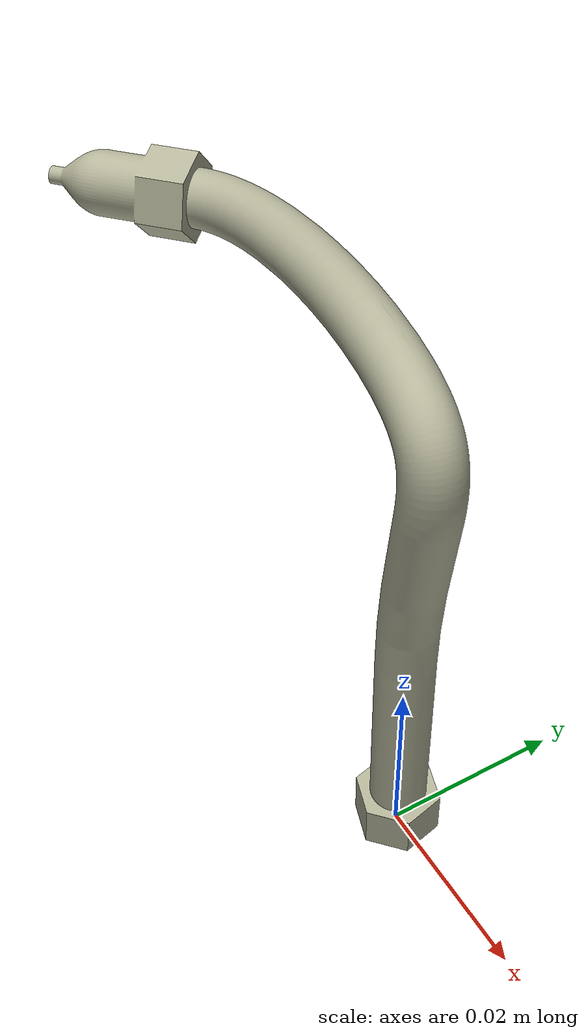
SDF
<?xml version="1.0" ?>
<sdf version="1.5">
  <model name="fuel-line2">
    <static>false</static>
    <link name="link">
      <collision name="collision">
        <geometry>
          <box>
            <size>1.70 0.50 0.57</size>
          </box>
        </geometry>
      </collision>
      <visual name="visual">
        <cast_shadows>true</cast_shadows>
        <geometry>
          <mesh>
            <scale>0.001 0.001 0.001</scale>
            <uri>model://fuel-line2/meshes/fuel-line2.dae</uri>
          </mesh>
        </geometry>
        <material>
          <script>
           <uri>file://media/materials/scripts/gazebo.material</uri>
           <name>Gazebo/Residential</name>
          </script>
        </material>
      </visual>
    </link>
  </model>
</sdf>
